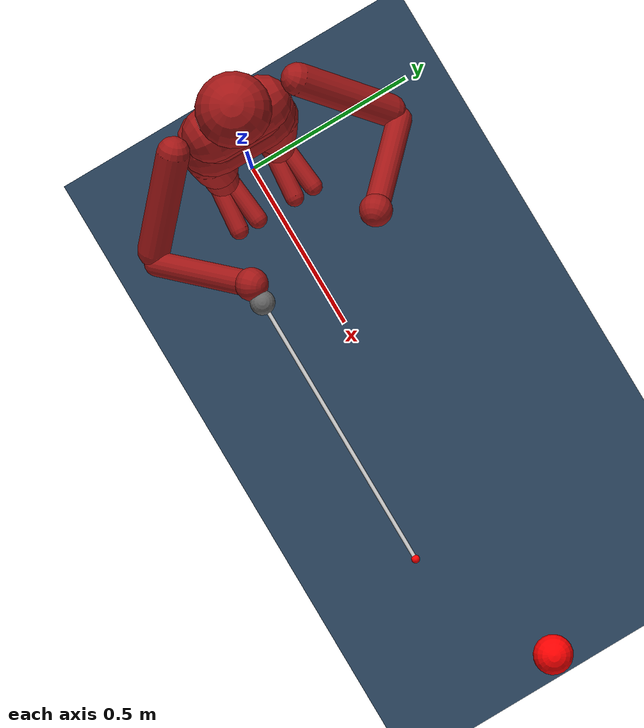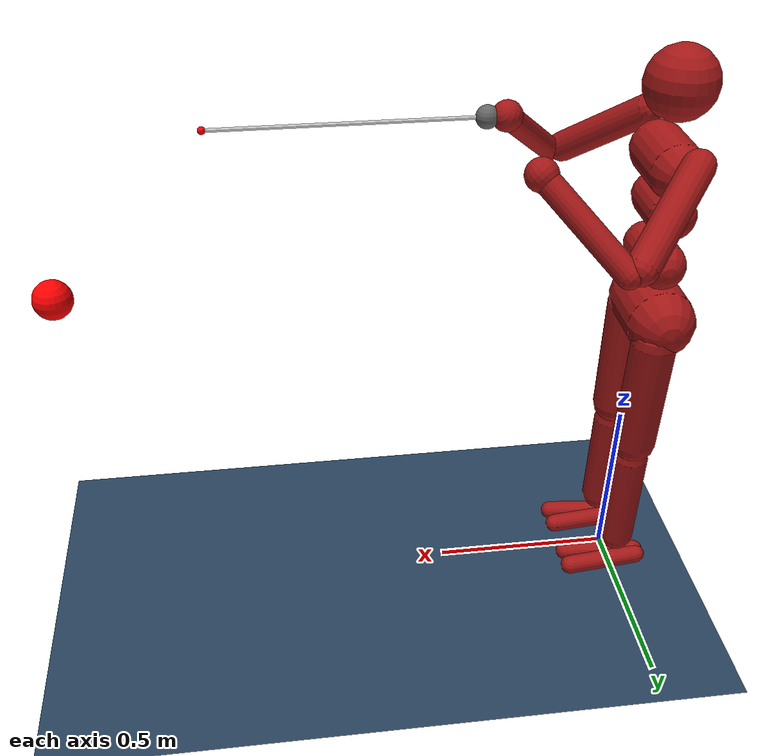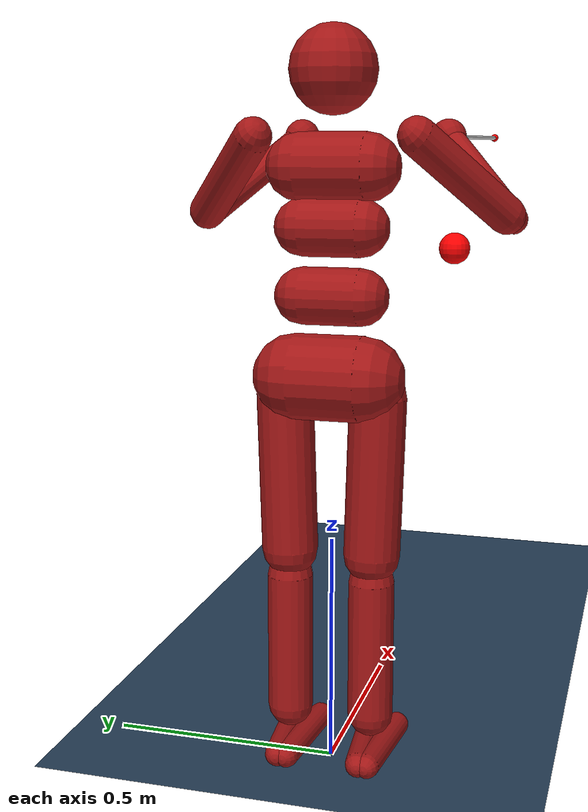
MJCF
<!-- Copyright 2021 DeepMind Technologies Limited. Modified for single-agent fencing. -->

<mujoco model="Single_Humanoid_Fencer">
  <option timestep="0.005"/>

  <visual>
    <map force="0.1" zfar="30"/>
    <rgba haze="0.15 0.25 0.35 1"/>
    <global offwidth="2560" offheight="1440" elevation="-20" azimuth="120"/>
  </visual>

  <!-- Center camera view on the single humanoid -->
  <statistic center="0 0 0.7"/>

  <asset>
    <texture type="skybox" builtin="gradient" rgb1=".3 .5 .7" rgb2="0 0 0" width="32" height="512"/>
    <!-- Fencer Color (Reddish/Maroon) -->
    <texture name="body_A" type="cube" builtin="flat" mark="cross" width="128" height="128" rgb1="0.8 0.3 0.3" rgb2="0.8 0.3 0.3" markrgb="1 1 1"/>
    <material name="body_A_mat" texture="body_A" texuniform="true" rgba="0.8 0.3 .3 1"/>

    <texture name="grid" type="2d" builtin="checker" width="512" height="512" rgb1=".1 .2 .3" rgb2=".2 .3 .4"/>
    <material name="grid" texture="grid" texrepeat="1 1" texuniform="true" reflectance=".2"/>
  </asset>

  <default>
    <motor ctrlrange="-1 1" ctrllimited="true"/>

    <default class="fencer_body">
      <!-- GEOMS -->
      <geom type="capsule" condim="1" friction=".7" solimp=".9 .99 .003" solref=".015 1" material="body_A_mat"/>
      <default class="thigh"><geom size=".06"/></default>
      <default class="shin"><geom fromto="0 0 0 0 0 -.3"  size=".049"/></default>
      <default class="foot">
        <geom size=".027"/>
        <default class="foot1"><geom fromto="-.07 -.01 0 .14 -.03 0"/></default>
        <default class="foot2"><geom fromto="-.07 .01 0 .14  .03 0"/></default>
      </default>
      <default class="arm_upper"><geom size=".04"/></default>
      <default class="arm_lower"><geom size=".031"/></default>
      <default class="hand"><geom type="sphere" size=".04"/></default>

      <!-- Epee Blade -->
      <default class="epee_blade_geom">
        <geom type="capsule" size="0.005" rgba="0.8 0.8 0.8 1" mass="0.05" group="2" condim="6"/>
      </default>
      <default class="epee_guard_geom">
        <geom type="sphere" size="0.03" rgba="0.4 0.4 0.4 1" mass="0.02" group="2"/>
      </default>

      <!-- JOINTS -->
      <joint type="hinge" damping=".2" stiffness="1" armature=".01" limited="true" solimplimit="0 .99 .01"/>

      <default class="joint_big">
        <joint damping="5" stiffness="10"/>
        <default class="hip_x"><joint range="-30 10"/></default>
        <default class="hip_z"><joint range="-60 35"/></default>
        <default class="hip_y"><joint axis="0 1 0" range="-150 20"/></default>
        <default class="joint_big_stiff"><joint stiffness="20"/></default>
      </default>

      <default class="knee">
        <joint pos="0 0 .02" axis="0 -1 0" range="-160 2"/>
      </default>
      <default class="ankle">
        <joint range="-50 50"/>
        <!-- Specific ankle classes defined here -->
        <default class="ankle_y">
          <joint pos="0 0 .08" axis="0 1 0" stiffness="6"/>
        </default>
        <default class="ankle_x">
          <joint pos="0 0 .04" stiffness="3"/>
        </default>
      </default>

      <!-- SHOULDER and ELBOW defaults (from prior fix) -->
      <default class="shoulder">
        <joint range="-85 60"/>
      </default>

      <default class="elbow">
        <joint range="-100 50" stiffness="0"/>
      </default>

    </default>
  </default>

  <worldbody>
    <geom name="floor" size="0 0 .05" type="plane" material="grid" condim="3"/>

    <light name="spotlight" mode="targetbodycom" target="torso" diffuse=".8 .8 .8" specular="0.3 0.3 0.3" pos="0 -6 4" cutoff="30"/>
    <light name="top" pos="0 0 2" mode="trackcom"/>

    <!-- Stationary target for epee hits -->
    <body name="target_body" pos="1.5 0.0 1.0">
      <geom name="target_geom" type="sphere" size="0.05" rgba="1 0 0 1" condim="3" contype="1" conaffinity="1"/>
      <site name="target_site" pos="0 0 0" size="0.01" rgba="1 0 0 0.5"/>
    </body>

    <!-- FENCER A Humanoid -->
    <body name="torso" pos="0 0 1.282" childclass="fencer_body">
      <camera name="back" pos="-3 0 1" xyaxes="0 -1 0 1 0 2" mode="trackcom"/>
      <camera name="side" pos="0 -3 1" xyaxes="1 0 0 0 1 2" mode="trackcom"/>
      <freejoint name="root"/>
      <geom name="torso" fromto="0 -.07 0 0 .07 0" size=".07"/>
      <geom name="waist_upper" fromto="-.01 -.06 -.12 -.01 .06 -.12" size=".06"/>
      <body name="head" pos="0 0 .19">
        <geom name="head" type="sphere" size=".09"/>
        <camera name="egocentric" pos=".09 0 0" xyaxes="0 -1 0 .1 0 1" fovy="80"/>
      </body>
      <body name="waist_lower" pos="-.01 0 -.26">
        <geom name="waist_lower" fromto="0 -.06 0 0 .06 0" size=".06"/>
        <joint name="abdomen_z" pos="0 0 .065" axis="0 0 1" range="-45 45" class="joint_big_stiff"/>
        <joint name="abdomen_y" pos="0 0 .065" axis="0 1 0" range="-75 30" class="joint_big"/>
        <body name="pelvis" pos="0 0 -.165">
          <joint name="abdomen_x" pos="0 0 .1" axis="1 0 0" range="-35 35" class="joint_big"/>
          <geom name="butt" fromto="-.02 -.07 0 -.02 .07 0" size=".09"/>
          <body name="thigh_right" pos="0 -.1 -.04">
            <joint name="hip_x_right" axis="1 0 0" class="hip_x"/>
            <joint name="hip_z_right" axis="0 0 1" class="hip_z"/>
            <joint name="hip_y_right" class="hip_y"/>
            <geom name="thigh_right" fromto="0 0 0 0 .01 -.34" class="thigh"/>
            <body name="shin_right" pos="0 .01 -.4">
              <joint name="knee_right" class="knee"/>
              <geom name="shin_right" class="shin"/>
              <body name="foot_right" pos="0 0 -.39">
                <joint name="ankle_y_right" class="ankle_y" axis="0 1 0" stiffness="6"/>
                <joint name="ankle_x_right" class="ankle_x" axis="1 0 .5" stiffness="3"/>
                <geom name="foot1_right" class="foot1"/>
                <geom name="foot2_right" class="foot2"/>
              </body>
            </body>
          </body>
          <body name="thigh_left" pos="0 .1 -.04">
            <joint name="hip_x_left" axis="-1 0 0" class="hip_x"/>
            <joint name="hip_z_left" axis="0 0 -1" class="hip_z"/>
            <joint name="hip_y_left" class="hip_y"/>
            <geom name="thigh_left" fromto="0 0 0 0 -.01 -.34" class="thigh"/>
            <body name="shin_left" pos="0 -.01 -.4">
              <joint name="knee_left" class="knee"/>
              <geom name="shin_left" fromto="0 0 0 0 0 -.3" class="shin"/>
              <body name="foot_left" pos="0 0 -.39">
                <joint name="ankle_y_left" class="ankle_y" axis="0 1 0" stiffness="6"/>
                <joint name="ankle_x_left" class="ankle_x" axis="-1 0 -.5" stiffness="3"/>
                <geom name="foot1_left" class="foot1"/>
                <geom name="foot2_left" class="foot2"/>
              </body>
            </body>
          </body>
        </body>
      </body>
      <body name="upper_arm_right" pos="0 -.17 .06">
        <joint name="shoulder1_right" axis="2 1 1"  class="shoulder"/>
        <joint name="shoulder2_right" axis="0 -1 1" class="shoulder"/>
        <geom name="upper_arm_right" fromto="0 0 0 .16 -.16 -.16" class="arm_upper"/>
        <body name="lower_arm_right" pos=".18 -.18 -.18">
          <joint name="elbow_right" axis="0 -1 1" class="elbow"/>
          <geom name="lower_arm_right" fromto=".01 .01 .01 .17 .17 .17" class="arm_lower"/>
          <body name="hand_right" pos=".18 .18 .18">
            <geom name="hand_right" zaxis="1 1 1" class="hand"/>
            <!-- Fencing epee (attached to right hand, aligned with forearm direction) -->
            <body name="epee" pos="0.05 0 0" quat="1 0 0 0">
              <!-- Blade geometry (group="2") -->
              <geom name="epee_blade" class="epee_blade_geom" fromto="0 0 0 0.7 0 0"/>
              <!-- Guard geometry (group="2") -->
              <geom name="epee_guard" class="epee_guard_geom" pos="0 0 0"/>
              <!-- Add a site at the tip of the blade (for sensing location) -->
              <site name="epee_tip" pos="0.7 0 0" size="0.01" rgba="1 0 0 1"/>
            </body>
          </body>
        </body>
      </body>
      <body name="upper_arm_left" pos="0 .17 .06">
        <joint name="shoulder1_left" axis="-2 1 -1" class="shoulder"/>
        <joint name="shoulder2_left" axis="0 -1 -1"  class="shoulder"/>
        <geom name="upper_arm_left" fromto="0 0 0 .16 .16 -.16" class="arm_upper"/>
        <body name="lower_arm_left" pos=".18 .18 -.18">
          <joint name="elbow_left" axis="0 -1 -1" class="elbow"/>
          <geom name="lower_arm_left" fromto=".01 -.01 .01 .17 -.17 .17" class="arm_lower"/>
          <body name="hand_left" pos=".18 -.18 .18">
            <geom name="hand_left" zaxis="1 -1 1" class="hand"/>
          </body>
        </body>
      </body>
    </body>
  </worldbody>

  <contact>
    <exclude body1="waist_lower" body2="thigh_right"/>
    <exclude body1="waist_lower" body2="thigh_left"/>
    <!-- Prevent the epee from colliding with the fencer's own arm/torso, as is standard practice -->
    <exclude body1="epee" body2="upper_arm_right"/>
    <exclude body1="epee" body2="lower_arm_right"/>
    <exclude body1="epee" body2="hand_right"/>
  </contact>

  <tendon>
    <fixed name="hamstring_right" limited="true" range="-0.3 2">
      <joint joint="hip_y_right" coef=".5"/>
      <joint joint="knee_right" coef="-.5"/>
    </fixed>
    <fixed name="hamstring_left" limited="true" range="-0.3 2">
      <joint joint="hip_y_left" coef=".5"/>
      <joint joint="knee_left" coef="-.5"/>
    </fixed>
  </tendon>

  <actuator>
    <motor name="abdomen_z"       gear="40"  joint="abdomen_z"/>
    <motor name="abdomen_y"       gear="40"  joint="abdomen_y"/>
    <motor name="abdomen_x"       gear="40"  joint="abdomen_x"/>
    <motor name="hip_x_right"     gear="40"  joint="hip_x_right"/>
    <motor name="hip_z_right"     gear="40"  joint="hip_z_right"/>
    <motor name="hip_y_right"     gear="120" joint="hip_y_right"/>
    <motor name="knee_right"      gear="80"  joint="knee_right"/>
    <motor name="ankle_y_right"   gear="20"  joint="ankle_y_right"/>
    <motor name="ankle_x_right"   gear="20"  joint="ankle_x_right"/>
    <motor name="hip_x_left"      gear="40"  joint="hip_x_left"/>
    <motor name="hip_z_left"      gear="40"  joint="hip_z_left"/>
    <motor name="hip_y_left"      gear="120" joint="hip_y_left"/>
    <motor name="knee_left"       gear="80"  joint="knee_left"/>
    <motor name="ankle_y_left"    gear="20"  joint="ankle_y_left"/>
    <motor name="ankle_x_left"    gear="20"  joint="ankle_x_left"/>
    <motor name="shoulder1_right" gear="20"  joint="shoulder1_right"/>
    <motor name="shoulder2_right" gear="20"  joint="shoulder2_right"/>
    <motor name="elbow_right"     gear="40"  joint="elbow_right"/>
    <motor name="shoulder1_left"  gear="20"  joint="shoulder1_left"/>
    <motor name="shoulder2_left"  gear="20"  joint="shoulder2_left"/>
    <motor name="elbow_left"      gear="40"  joint="elbow_left"/>
  </actuator>

  <keyframe>
    <!--
    The values below correspond to the 28 DOFs:
    7 (Root) + 3 (Spine) + 6 (R Leg) + 6 (L Leg) + 6 (Arms) = 28
    -->
    <key name="squat"
         qpos="0 0 0.596
               0.988015 0 0.154359 0
               0 0.4 0
               -0.25 -0.5 -2.5 -2.65 -0.8 0.56
               -0.25 -0.5 -2.5 -2.65 -0.8 0.56
               0 0 0 0 0 0"/> <!-- FIXED: Reduced from 12 values (34 total) to 6 values (28 total) -->
    <key name="stand_on_left_leg"
         qpos="0 0 1.21948
               0.971588 -0.179973 0.135318 -0.0729076
               -0.0516 -0.202 0.23
               -0.24 -0.007 -0.34 -1.76 -0.466 -0.0415
               -0.08 -0.01 -0.37 -0.685 -0.35 -0.09
               0.109 -0.067 -0.7 -0.05 0.12 0.16"/>
    <key name="prone"
         qpos="0.4 0 0.0757706
               0.7325 0 0.680767 0
               0 0.0729 0
               0.0077 0.0019 -0.026 -0.351 -0.27 0
               0.0077 0.0019 -0.026 -0.351 -0.27 0
               0.56 -0.62 -1.752 0.56 -0.62 -1.752"/>
    <key name="supine"
         qpos="-0.4 0 0.08122
               0.722788 0 -0.69107 0
               0 -0.25 0
               0.0182 0.0142 0.3 0.042 -0.44 -0.02
               0.0182 0.0142 0.3 0.042 -0.44 -0.02
               0.186 -0.73 -1.73 0.186 -0.73 -1.73"/>
  </keyframe>
  <sensor>
    <!-- Measures normal contact forces at the epee tip -->
    <touch name="epee_tip_touch" site="epee_tip"/>
    <!-- Target contact -->
    <touch name="target_hit" site="target_site"/>
  </sensor>
</mujoco>
